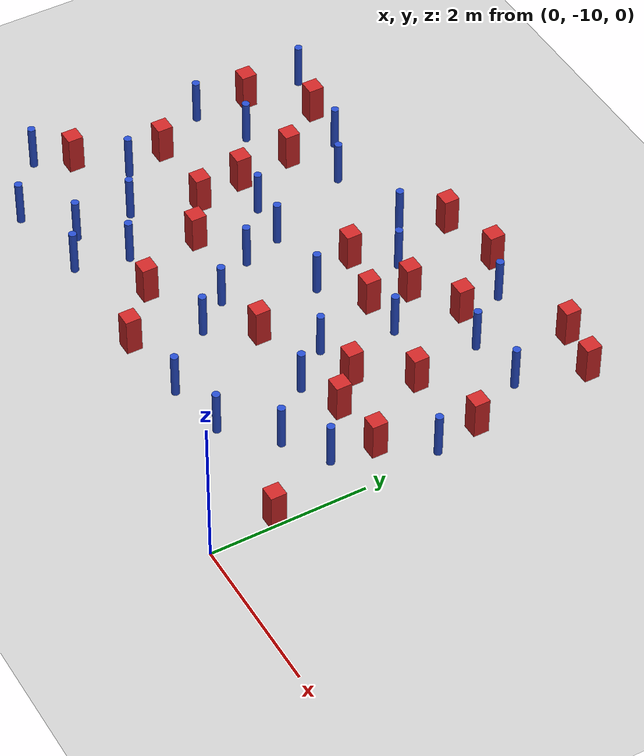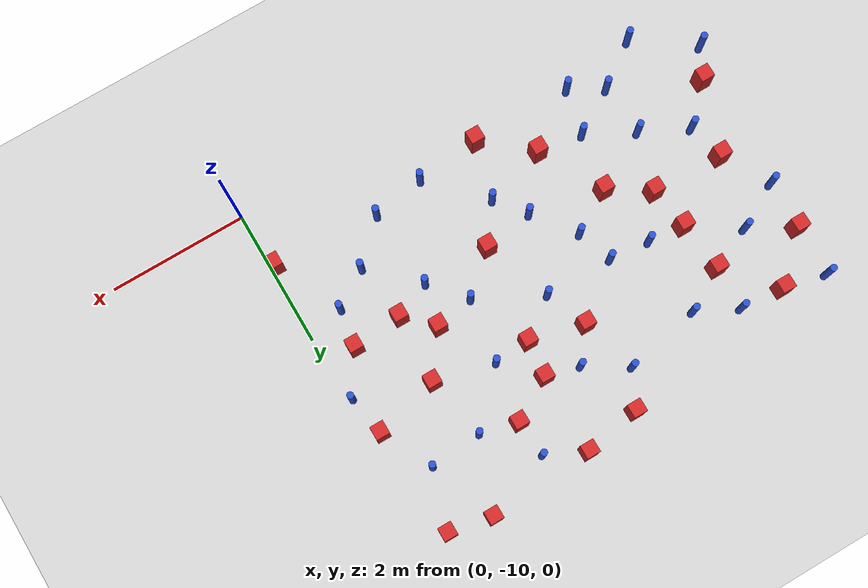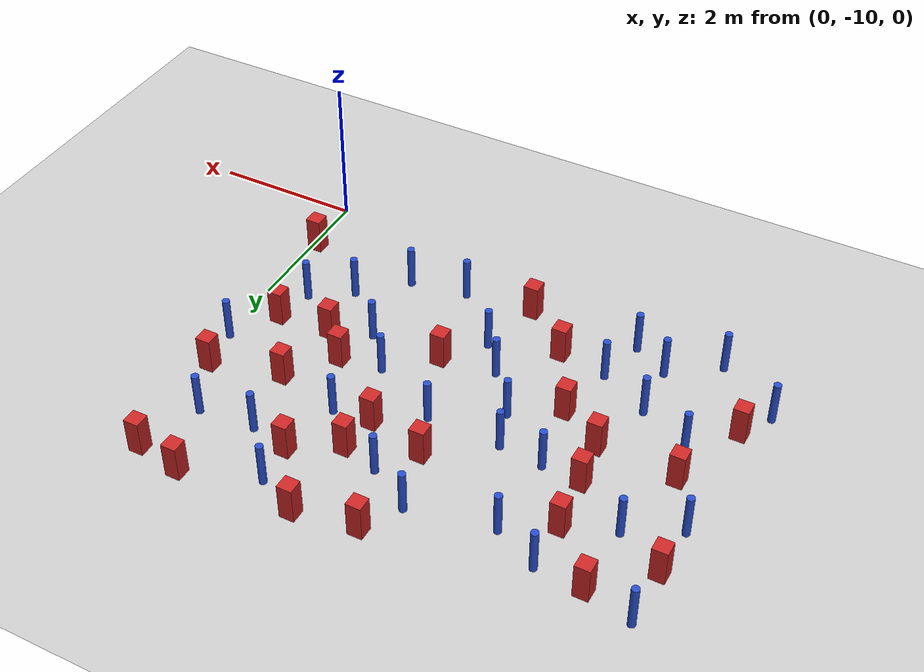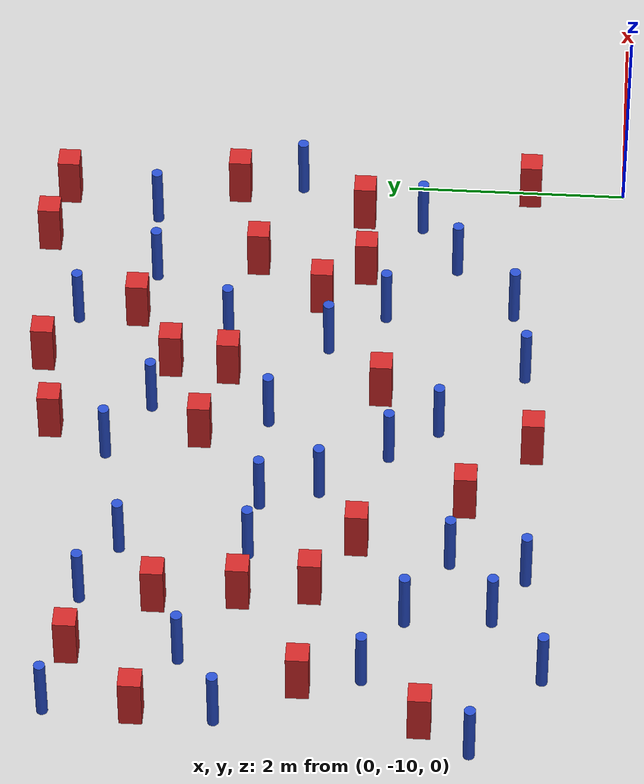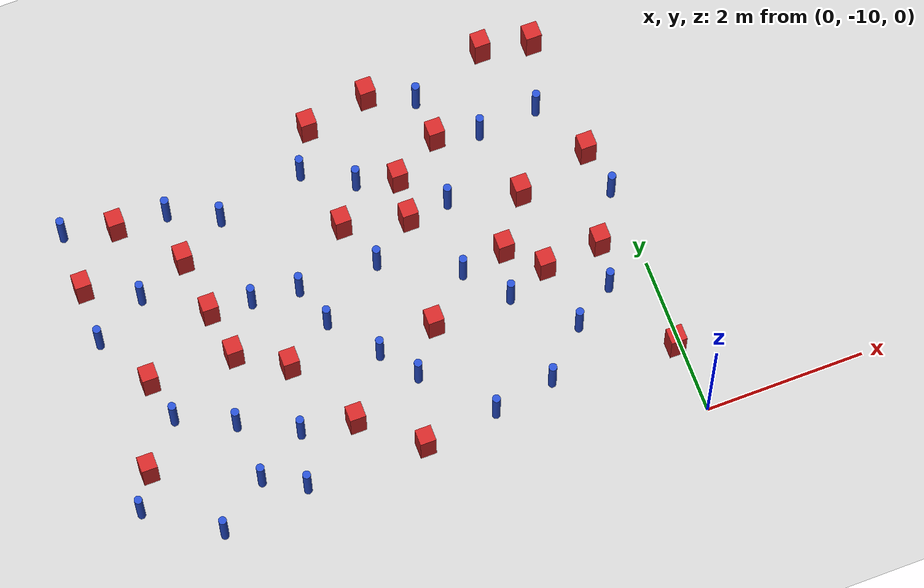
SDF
<sdf version="1.6">
 <world name="default">
  <model name="ground_plane">
   <static>1</static>
   <link name="link">
    <collision name="collision">
     <geometry><plane><normal>0 0 1</normal><size>100 100</size></plane></geometry>
     <surface><friction><ode><mu>100</mu><mu2>50</mu2></ode></friction></surface>
    </collision>
    <visual name="visual">
     <cast_shadows>0</cast_shadows>
     <geometry><plane><normal>0 0 1</normal><size>100 100</size></plane></geometry>
     <material>
      <ambient>1.0 1.0 1.0 1.0</ambient>
      <diffuse>0.8 0.8 0.8 1.0</diffuse>
      <specular>0.01 0.01 0.01 1.000000</specular>
     </material>
    </visual>
   </link>
  </model>
  <model name="square_post_obstacle2">
   <static>true</static>
   <pose>-6.1309527959 -7.35485237627 8.22691968438e-08 7.22125133819e-06 -7.54495500217e-07 2.29674213826e-05</pose>
   <link name="link">
    <pose>0 0 0.25 0 -0 0</pose>
    <inertial>
     <mass>100</mass>
     <inertia>
      <ixx>0.166667</ixx>
      <ixy>0</ixy>
      <ixz>0</ixz>
      <iyy>0.166667</iyy>
      <iyz>0</iyz>
      <izz>0.166667</izz>
     </inertia>
    </inertial>
    <collision name="collision"><geometry><box><size>.2 .2 .5</size></box></geometry></collision>
    <visual name="visual">
     <geometry><box><size>.2 .2 .5</size></box></geometry>
     <material>
      <script><name>Gazebo/Red</name><uri>file://media/materials/scripts/gazebo.material</uri></script>
     </material>
    </visual>
   </link>
  </model>
  <model name="pole_obstacle17">
   <static>true</static>
   <pose>-4.05257553489 -6.87511140498 2.88873142074e-08 -9.90536690842e-09 4.60219948965e-07 -1.20965994976e-07</pose>
   <link name="link">
    <pose>0 0 0.3 0 -0 0</pose>
    <inertial>
     <mass>1</mass>
     <inertia><ixx>0.145833</ixx><ixy>0</ixy><ixz>0</ixz><iyy>0.145833</iyy><iyz>0</iyz><izz>0.125</izz></inertia>
    </inertial>
    <collision name="collision">
     <geometry><cylinder><radius>0.05</radius><length>.6</length></cylinder></geometry>
    </collision>
    <visual name="visual">
     <geometry><cylinder><radius>0.05</radius><length>.6</length></cylinder></geometry>
     <material>
      <script><name>Gazebo/Blue</name><uri>file://media/materials/scripts/gazebo.material</uri></script>
     </material>
    </visual>
   </link>
  </model>
  <model name="square_post_obstacle13">
   <static>true</static>
   <pose>-4.49310102387 -7.76069410505 8.22691968438e-08 7.2212513382e-06 -7.54495500217e-07 2.29674213826e-05</pose>
   <link name="link">
    <pose>0 0 0.25 0 -0 0</pose>
    <inertial>
     <mass>100</mass>
     <inertia>
      <ixx>0.166667</ixx>
      <ixy>0</ixy>
      <ixz>0</ixz>
      <iyy>0.166667</iyy>
      <iyz>0</iyz>
      <izz>0.166667</izz>
     </inertia>
    </inertial>
    <collision name="collision"><geometry><box><size>.2 .2 .5</size></box></geometry></collision>
    <visual name="visual">
     <geometry><box><size>.2 .2 .5</size></box></geometry>
     <material>
      <script><name>Gazebo/Red</name><uri>file://media/materials/scripts/gazebo.material</uri></script>
     </material>
    </visual>
   </link>
  </model>
  <model name="square_post_obstacle14">
   <static>true</static>
   <pose>-1.11378315135 -6.66036221192 8.22691968438e-08 7.2212513382e-06 -7.54495500217e-07 2.29674213826e-05</pose>
   <link name="link">
    <pose>0 0 0.25 0 -0 0</pose>
    <inertial>
     <mass>100</mass>
     <inertia>
      <ixx>0.166667</ixx>
      <ixy>0</ixy>
      <ixz>0</ixz>
      <iyy>0.166667</iyy>
      <iyz>0</iyz>
      <izz>0.166667</izz>
     </inertia>
    </inertial>
    <collision name="collision"><geometry><box><size>.2 .2 .5</size></box></geometry></collision>
    <visual name="visual">
     <geometry><box><size>.2 .2 .5</size></box></geometry>
     <material>
      <script><name>Gazebo/Red</name><uri>file://media/materials/scripts/gazebo.material</uri></script>
     </material>
    </visual>
   </link>
  </model>
  <model name="pole_obstacle19">
   <static>true</static>
   <pose>-1.98300112717 -6.44486799128 2.88873142074e-08 -9.90536689721e-09 4.60219948992e-07 -1.20965994958e-07</pose>
   <link name="link">
    <pose>0 0 0.3 0 -0 0</pose>
    <inertial>
     <mass>1</mass>
     <inertia><ixx>0.145833</ixx><ixy>0</ixy><ixz>0</ixz><iyy>0.145833</iyy><iyz>0</iyz><izz>0.125</izz></inertia>
    </inertial>
    <collision name="collision">
     <geometry><cylinder><radius>0.05</radius><length>.6</length></cylinder></geometry>
    </collision>
    <visual name="visual">
     <geometry><cylinder><radius>0.05</radius><length>.6</length></cylinder></geometry>
     <material>
      <script><name>Gazebo/Blue</name><uri>file://media/materials/scripts/gazebo.material</uri></script>
     </material>
    </visual>
   </link>
  </model>
  <model name="pole_obstacle22">
   <static>true</static>
   <pose>-3.09804642663 -8.41578343584 2.88873142074e-08 -9.90536692318e-09 4.6021994893e-07 -1.20965994988e-07</pose>
   <link name="link">
    <pose>0 0 0.3 0 -0 0</pose>
    <inertial>
     <mass>1</mass>
     <inertia><ixx>0.145833</ixx><ixy>0</ixy><ixz>0</ixz><iyy>0.145833</iyy><iyz>0</iyz><izz>0.125</izz></inertia>
    </inertial>
    <collision name="collision">
     <geometry><cylinder><radius>0.05</radius><length>.6</length></cylinder></geometry>
    </collision>
    <visual name="visual">
     <geometry><cylinder><radius>0.05</radius><length>.6</length></cylinder></geometry>
     <material>
      <script><name>Gazebo/Blue</name><uri>file://media/materials/scripts/gazebo.material</uri></script>
     </material>
    </visual>
   </link>
  </model>
  <model name="pole_obstacle26">
   <static>true</static>
   <pose>-6.52541339041 -6.65995649793 2.88873142074e-08 -9.90536690842e-09 4.60219948965e-07 -1.20965994976e-07</pose>
   <link name="link">
    <pose>0 0 0.3 0 -0 0</pose>
    <inertial>
     <mass>1</mass>
     <inertia><ixx>0.145833</ixx><ixy>0</ixy><ixz>0</ixz><iyy>0.145833</iyy><iyz>0</iyz><izz>0.125</izz></inertia>
    </inertial>
    <collision name="collision">
     <geometry><cylinder><radius>0.05</radius><length>.6</length></cylinder></geometry>
    </collision>
    <visual name="visual">
     <geometry><cylinder><radius>0.05</radius><length>.6</length></cylinder></geometry>
     <material>
      <script><name>Gazebo/Blue</name><uri>file://media/materials/scripts/gazebo.material</uri></script>
     </material>
    </visual>
   </link>
  </model>
  <model name="square_post_obstacle22">
   <static>true</static>
   <pose>-0.173707152083 -6.42175875092 8.22691968438e-08 7.22125133819e-06 -7.54495500217e-07 2.29674213826e-05</pose>
   <link name="link">
    <pose>0 0 0.25 0 -0 0</pose>
    <inertial>
     <mass>100</mass>
     <inertia>
      <ixx>0.166667</ixx>
      <ixy>0</ixy>
      <ixz>0</ixz>
      <iyy>0.166667</iyy>
      <iyz>0</iyz>
      <izz>0.166667</izz>
     </inertia>
    </inertial>
    <collision name="collision"><geometry><box><size>.2 .2 .5</size></box></geometry></collision>
    <visual name="visual">
     <geometry><box><size>.2 .2 .5</size></box></geometry>
     <material>
      <script><name>Gazebo/Red</name><uri>file://media/materials/scripts/gazebo.material</uri></script>
     </material>
    </visual>
   </link>
  </model>
  <model name="square_post_obstacle34">
   <static>true</static>
   <pose>-5.07407825925 -7.38916831195 8.22691968438e-08 7.2212513382e-06 -7.54495500217e-07 2.29674213826e-05</pose>
   <link name="link">
    <pose>0 0 0.25 0 -0 0</pose>
    <inertial>
     <mass>100</mass>
     <inertia>
      <ixx>0.166667</ixx>
      <ixy>0</ixy>
      <ixz>0</ixz>
      <iyy>0.166667</iyy>
      <iyz>0</iyz>
      <izz>0.166667</izz>
     </inertia>
    </inertial>
    <collision name="collision"><geometry><box><size>.2 .2 .5</size></box></geometry></collision>
    <visual name="visual">
     <geometry><box><size>.2 .2 .5</size></box></geometry>
     <material>
      <script><name>Gazebo/Red</name><uri>file://media/materials/scripts/gazebo.material</uri></script>
     </material>
    </visual>
   </link>
  </model>
  <model name="pole_obstacle46">
   <static>true</static>
   <pose>-5.86941868117 -6.303239002 2.88873142074e-08 -9.90536690842e-09 4.60219948965e-07 -1.20965994976e-07</pose>
   <link name="link">
    <pose>0 0 0.3 0 -0 0</pose>
    <inertial>
     <mass>1</mass>
     <inertia><ixx>0.145833</ixx><ixy>0</ixy><ixz>0</ixz><iyy>0.145833</iyy><iyz>0</iyz><izz>0.125</izz></inertia>
    </inertial>
    <collision name="collision">
     <geometry><cylinder><radius>0.05</radius><length>.6</length></cylinder></geometry>
    </collision>
    <visual name="visual">
     <geometry><cylinder><radius>0.05</radius><length>.6</length></cylinder></geometry>
     <material>
      <script><name>Gazebo/Blue</name><uri>file://media/materials/scripts/gazebo.material</uri></script>
     </material>
    </visual>
   </link>
  </model>
  <model name="square_post_obstacle40">
   <static>true</static>
   <pose>-6.50919420673 -8.41149481625 8.22691968438e-08 7.2212513382e-06 -7.54495500217e-07 2.29674213826e-05</pose>
   <link name="link">
    <pose>0 0 0.25 0 -0 0</pose>
    <inertial>
     <mass>100</mass>
     <inertia>
      <ixx>0.166667</ixx>
      <ixy>0</ixy>
      <ixz>0</ixz>
      <iyy>0.166667</iyy>
      <iyz>0</iyz>
      <izz>0.166667</izz>
     </inertia>
    </inertial>
    <collision name="collision"><geometry><box><size>.2 .2 .5</size></box></geometry></collision>
    <visual name="visual">
     <geometry><box><size>.2 .2 .5</size></box></geometry>
     <material>
      <script><name>Gazebo/Red</name><uri>file://media/materials/scripts/gazebo.material</uri></script>
     </material>
    </visual>
   </link>
  </model>
  <model name="pole_obstacle54">
   <static>true</static>
   <pose>-5.29155931225 -8.97949971006 2.88873142074e-08 -9.9053668967e-09 4.60219948993e-07 -1.20965994957e-07</pose>
   <link name="link">
    <pose>0 0 0.3 0 -0 0</pose>
    <inertial>
     <mass>1</mass>
     <inertia><ixx>0.145833</ixx><ixy>0</ixy><ixz>0</ixz><iyy>0.145833</iyy><iyz>0</iyz><izz>0.125</izz></inertia>
    </inertial>
    <collision name="collision">
     <geometry><cylinder><radius>0.05</radius><length>.6</length></cylinder></geometry>
    </collision>
    <visual name="visual">
     <geometry><cylinder><radius>0.05</radius><length>.6</length></cylinder></geometry>
     <material>
      <script><name>Gazebo/Blue</name><uri>file://media/materials/scripts/gazebo.material</uri></script>
     </material>
    </visual>
   </link>
  </model>
  <model name="square_post_obstacle41">
   <static>true</static>
   <pose>-3.2504737241 -4.94294712398 8.22691968438e-08 7.2212513382e-06 -7.54495500217e-07 2.29674213826e-05</pose>
   <link name="link">
    <pose>0 0 0.25 0 -0 0</pose>
    <inertial>
     <mass>100</mass>
     <inertia>
      <ixx>0.166667</ixx>
      <ixy>0</ixy>
      <ixz>0</ixz>
      <iyy>0.166667</iyy>
      <iyz>0</iyz>
      <izz>0.166667</izz>
     </inertia>
    </inertial>
    <collision name="collision"><geometry><box><size>.2 .2 .5</size></box></geometry></collision>
    <visual name="visual">
     <geometry><box><size>.2 .2 .5</size></box></geometry>
     <material>
      <script><name>Gazebo/Red</name><uri>file://media/materials/scripts/gazebo.material</uri></script>
     </material>
    </visual>
   </link>
  </model>
  <model name="pole_obstacle57">
   <static>true</static>
   <pose>-2.13132711941 -7.36952335918 2.88873142074e-08 -9.90536689859e-09 4.60219948989e-07 -1.20965994961e-07</pose>
   <link name="link">
    <pose>0 0 0.3 0 -0 0</pose>
    <inertial>
     <mass>1</mass>
     <inertia><ixx>0.145833</ixx><ixy>0</ixy><ixz>0</ixz><iyy>0.145833</iyy><iyz>0</iyz><izz>0.125</izz></inertia>
    </inertial>
    <collision name="collision">
     <geometry><cylinder><radius>0.05</radius><length>.6</length></cylinder></geometry>
    </collision>
    <visual name="visual">
     <geometry><cylinder><radius>0.05</radius><length>.6</length></cylinder></geometry>
     <material>
      <script><name>Gazebo/Blue</name><uri>file://media/materials/scripts/gazebo.material</uri></script>
     </material>
    </visual>
   </link>
  </model>
  <model name="pole_obstacle60">
   <static>true</static>
   <pose>-1.29528579575 -5.73501356907 2.88873142074e-08 -9.90536689852e-09 4.60219948989e-07 -1.2096599496e-07</pose>
   <link name="link">
    <pose>0 0 0.3 0 -0 0</pose>
    <inertial>
     <mass>1</mass>
     <inertia><ixx>0.145833</ixx><ixy>0</ixy><ixz>0</ixz><iyy>0.145833</iyy><iyz>0</iyz><izz>0.125</izz></inertia>
    </inertial>
    <collision name="collision">
     <geometry><cylinder><radius>0.05</radius><length>.6</length></cylinder></geometry>
    </collision>
    <visual name="visual">
     <geometry><cylinder><radius>0.05</radius><length>.6</length></cylinder></geometry>
     <material>
      <script><name>Gazebo/Blue</name><uri>file://media/materials/scripts/gazebo.material</uri></script>
     </material>
    </visual>
   </link>
  </model>
  <model name="pole_obstacle61">
   <static>true</static>
   <pose>-3.52869566853 -5.45964716681 2.88873142074e-08 -9.90536689859e-09 4.60219948989e-07 -1.20965994961e-07</pose>
   <link name="link">
    <pose>0 0 0.3 0 -0 0</pose>
    <inertial>
     <mass>1</mass>
     <inertia><ixx>0.145833</ixx><ixy>0</ixy><ixz>0</ixz><iyy>0.145833</iyy><iyz>0</iyz><izz>0.125</izz></inertia>
    </inertial>
    <collision name="collision">
     <geometry><cylinder><radius>0.05</radius><length>.6</length></cylinder></geometry>
    </collision>
    <visual name="visual">
     <geometry><cylinder><radius>0.05</radius><length>.6</length></cylinder></geometry>
     <material>
      <script><name>Gazebo/Blue</name><uri>file://media/materials/scripts/gazebo.material</uri></script>
     </material>
    </visual>
   </link>
  </model>
  <model name="square_post_obstacle47">
   <static>true</static>
   <pose>-2.43380180877 -4.80000391732 8.22691968438e-08 7.22125133819e-06 -7.54495500217e-07 2.29674213826e-05</pose>
   <link name="link">
    <pose>0 0 0.25 0 -0 0</pose>
    <inertial>
     <mass>100</mass>
     <inertia>
      <ixx>0.166667</ixx>
      <ixy>0</ixy>
      <ixz>0</ixz>
      <iyy>0.166667</iyy>
      <iyz>0</iyz>
      <izz>0.166667</izz>
     </inertia>
    </inertial>
    <collision name="collision"><geometry><box><size>.2 .2 .5</size></box></geometry></collision>
    <visual name="visual">
     <geometry><box><size>.2 .2 .5</size></box></geometry>
     <material>
      <script><name>Gazebo/Red</name><uri>file://media/materials/scripts/gazebo.material</uri></script>
     </material>
    </visual>
   </link>
  </model>
  <model name="pole_obstacle78">
   <static>true</static>
   <pose>-1.70802177076 -7.86918268963 2.88873142074e-08 -9.90536689852e-09 4.60219948989e-07 -1.2096599496e-07</pose>
   <link name="link">
    <pose>0 0 0.3 0 -0 0</pose>
    <inertial>
     <mass>1</mass>
     <inertia><ixx>0.145833</ixx><ixy>0</ixy><ixz>0</ixz><iyy>0.145833</iyy><iyz>0</iyz><izz>0.125</izz></inertia>
    </inertial>
    <collision name="collision">
     <geometry><cylinder><radius>0.05</radius><length>.6</length></cylinder></geometry>
    </collision>
    <visual name="visual">
     <geometry><cylinder><radius>0.05</radius><length>.6</length></cylinder></geometry>
     <material>
      <script><name>Gazebo/Blue</name><uri>file://media/materials/scripts/gazebo.material</uri></script>
     </material>
    </visual>
   </link>
  </model>
  <model name="square_post_obstacle67">
   <static>true</static>
   <pose>-3.29611910945 -6.28791906634 8.22691968438e-08 7.22125133819e-06 -7.54495500217e-07 2.29674213826e-05</pose>
   <link name="link">
    <pose>0 0 0.25 0 -0 0</pose>
    <inertial>
     <mass>100</mass>
     <inertia>
      <ixx>0.166667</ixx>
      <ixy>0</ixy>
      <ixz>0</ixz>
      <iyy>0.166667</iyy>
      <iyz>0</iyz>
      <izz>0.166667</izz>
     </inertia>
    </inertial>
    <collision name="collision"><geometry><box><size>.2 .2 .5</size></box></geometry></collision>
    <visual name="visual">
     <geometry><box><size>.2 .2 .5</size></box></geometry>
     <material>
      <script><name>Gazebo/Red</name><uri>file://media/materials/scripts/gazebo.material</uri></script>
     </material>
    </visual>
   </link>
  </model>
  <model name="square_post_obstacle70">
   <static>true</static>
   <pose>-0.0783402880861 -9.13439227131 8.22691968438e-08 7.2212513382e-06 -7.54495500217e-07 2.29674213826e-05</pose>
   <link name="link">
    <pose>0 0 0.25 0 -0 0</pose>
    <inertial>
     <mass>100</mass>
     <inertia>
      <ixx>0.166667</ixx>
      <ixy>0</ixy>
      <ixz>0</ixz>
      <iyy>0.166667</iyy>
      <iyz>0</iyz>
      <izz>0.166667</izz>
     </inertia>
    </inertial>
    <collision name="collision"><geometry><box><size>.2 .2 .5</size></box></geometry></collision>
    <visual name="visual">
     <geometry><box><size>.2 .2 .5</size></box></geometry>
     <material>
      <script><name>Gazebo/Red</name><uri>file://media/materials/scripts/gazebo.material</uri></script>
     </material>
    </visual>
   </link>
  </model>
  <model name="pole_obstacle84">
   <static>true</static>
   <pose>-5.33642011508 -8.2233195706 2.88873142074e-08 -9.9053668967e-09 4.60219948993e-07 -1.20965994957e-07</pose>
   <link name="link">
    <pose>0 0 0.3 0 -0 0</pose>
    <inertial>
     <mass>1</mass>
     <inertia><ixx>0.145833</ixx><ixy>0</ixy><ixz>0</ixz><iyy>0.145833</iyy><iyz>0</iyz><izz>0.125</izz></inertia>
    </inertial>
    <collision name="collision">
     <geometry><cylinder><radius>0.05</radius><length>.6</length></cylinder></geometry>
    </collision>
    <visual name="visual">
     <geometry><cylinder><radius>0.05</radius><length>.6</length></cylinder></geometry>
     <material>
      <script><name>Gazebo/Blue</name><uri>file://media/materials/scripts/gazebo.material</uri></script>
     </material>
    </visual>
   </link>
  </model>
  <model name="pole_obstacle85">
   <static>true</static>
   <pose>-4.63407916396 -5.68388342919 2.88873142074e-08 -9.90536690842e-09 4.60219948965e-07 -1.20965994976e-07</pose>
   <link name="link">
    <pose>0 0 0.3 0 -0 0</pose>
    <inertial>
     <mass>1</mass>
     <inertia><ixx>0.145833</ixx><ixy>0</ixy><ixz>0</ixz><iyy>0.145833</iyy><iyz>0</iyz><izz>0.125</izz></inertia>
    </inertial>
    <collision name="collision">
     <geometry><cylinder><radius>0.05</radius><length>.6</length></cylinder></geometry>
    </collision>
    <visual name="visual">
     <geometry><cylinder><radius>0.05</radius><length>.6</length></cylinder></geometry>
     <material>
      <script><name>Gazebo/Blue</name><uri>file://media/materials/scripts/gazebo.material</uri></script>
     </material>
    </visual>
   </link>
  </model>
  <model name="pole_obstacle88">
   <static>true</static>
   <pose>-3.88429072119 -7.39313524959 2.88873142074e-08 -9.90536689859e-09 4.60219948989e-07 -1.20965994961e-07</pose>
   <link name="link">
    <pose>0 0 0.3 0 -0 0</pose>
    <inertial>
     <mass>1</mass>
     <inertia><ixx>0.145833</ixx><ixy>0</ixy><ixz>0</ixz><iyy>0.145833</iyy><iyz>0</iyz><izz>0.125</izz></inertia>
    </inertial>
    <collision name="collision">
     <geometry><cylinder><radius>0.05</radius><length>.6</length></cylinder></geometry>
    </collision>
    <visual name="visual">
     <geometry><cylinder><radius>0.05</radius><length>.6</length></cylinder></geometry>
     <material>
      <script><name>Gazebo/Blue</name><uri>file://media/materials/scripts/gazebo.material</uri></script>
     </material>
    </visual>
   </link>
  </model>
  <model name="pole_obstacle94">
   <static>true</static>
   <pose>-0.0699095740145 -7.00481002592 2.88873142074e-08 -9.90536689653e-09 4.60219948994e-07 -1.20965994959e-07</pose>
   <link name="link">
    <pose>0 0 0.3 0 -0 0</pose>
    <inertial>
     <mass>1</mass>
     <inertia><ixx>0.145833</ixx><ixy>0</ixy><ixz>0</ixz><iyy>0.145833</iyy><iyz>0</iyz><izz>0.125</izz></inertia>
    </inertial>
    <collision name="collision">
     <geometry><cylinder><radius>0.05</radius><length>.6</length></cylinder></geometry>
    </collision>
    <visual name="visual">
     <geometry><cylinder><radius>0.05</radius><length>.6</length></cylinder></geometry>
     <material>
      <script><name>Gazebo/Blue</name><uri>file://media/materials/scripts/gazebo.material</uri></script>
     </material>
    </visual>
   </link>
  </model>
  <model name="square_post_obstacle89">
   <static>true</static>
   <pose>-1.18097050835 -7.65887278141 8.22691968438e-08 7.2212513382e-06 -7.54495500217e-07 2.29674213826e-05</pose>
   <link name="link">
    <pose>0 0 0.25 0 -0 0</pose>
    <inertial>
     <mass>100</mass>
     <inertia>
      <ixx>0.166667</ixx>
      <ixy>0</ixy>
      <ixz>0</ixz>
      <iyy>0.166667</iyy>
      <iyz>0</iyz>
      <izz>0.166667</izz>
     </inertia>
    </inertial>
    <collision name="collision"><geometry><box><size>.2 .2 .5</size></box></geometry></collision>
    <visual name="visual">
     <geometry><box><size>.2 .2 .5</size></box></geometry>
     <material>
      <script><name>Gazebo/Red</name><uri>file://media/materials/scripts/gazebo.material</uri></script>
     </material>
    </visual>
   </link>
  </model>
  <model name="square_post_obstacle91">
   <static>true</static>
   <pose>-5.23971210616 -6.03947432926 8.22691968438e-08 7.2212513382e-06 -7.54495500217e-07 2.29674213826e-05</pose>
   <link name="link">
    <pose>0 0 0.25 0 -0 0</pose>
    <inertial>
     <mass>100</mass>
     <inertia>
      <ixx>0.166667</ixx>
      <ixy>0</ixy>
      <ixz>0</ixz>
      <iyy>0.166667</iyy>
      <iyz>0</iyz>
      <izz>0.166667</izz>
     </inertia>
    </inertial>
    <collision name="collision"><geometry><box><size>.2 .2 .5</size></box></geometry></collision>
    <visual name="visual">
     <geometry><box><size>.2 .2 .5</size></box></geometry>
     <material>
      <script><name>Gazebo/Red</name><uri>file://media/materials/scripts/gazebo.material</uri></script>
     </material>
    </visual>
   </link>
  </model>
  <model name="pole_obstacle100">
   <static>true</static>
   <pose>-6.00916233773 -7.88989753271 2.88873142074e-08 -9.90536690842e-09 4.60219948965e-07 -1.20965994976e-07</pose>
   <link name="link">
    <pose>0 0 0.3 0 -0 0</pose>
    <inertial>
     <mass>1</mass>
     <inertia><ixx>0.145833</ixx><ixy>0</ixy><ixz>0</ixz><iyy>0.145833</iyy><iyz>0</iyz><izz>0.125</izz></inertia>
    </inertial>
    <collision name="collision">
     <geometry><cylinder><radius>0.05</radius><length>.6</length></cylinder></geometry>
    </collision>
    <visual name="visual">
     <geometry><cylinder><radius>0.05</radius><length>.6</length></cylinder></geometry>
     <material>
      <script><name>Gazebo/Blue</name><uri>file://media/materials/scripts/gazebo.material</uri></script>
     </material>
    </visual>
   </link>
  </model>
  <model name="pole_obstacle109">
   <static>true</static>
   <pose>-1.87659597492 -5.0630314162 2.88873142074e-08 -9.90536689852e-09 4.60219948989e-07 -1.2096599496e-07</pose>
   <link name="link">
    <pose>0 0 0.3 0 -0 0</pose>
    <inertial>
     <mass>1</mass>
     <inertia><ixx>0.145833</ixx><ixy>0</ixy><ixz>0</ixz><iyy>0.145833</iyy><iyz>0</iyz><izz>0.125</izz></inertia>
    </inertial>
    <collision name="collision">
     <geometry><cylinder><radius>0.05</radius><length>.6</length></cylinder></geometry>
    </collision>
    <visual name="visual">
     <geometry><cylinder><radius>0.05</radius><length>.6</length></cylinder></geometry>
     <material>
      <script><name>Gazebo/Blue</name><uri>file://media/materials/scripts/gazebo.material</uri></script>
     </material>
    </visual>
   </link>
  </model>
  <model name="pole_obstacle112">
   <static>true</static>
   <pose>-3.06117662168 -6.88693171159 2.88873142074e-08 -9.90536692062e-09 4.60219948937e-07 -1.20965994985e-07</pose>
   <link name="link">
    <pose>0 0 0.3 0 -0 0</pose>
    <inertial>
     <mass>1</mass>
     <inertia><ixx>0.145833</ixx><ixy>0</ixy><ixz>0</ixz><iyy>0.145833</iyy><iyz>0</iyz><izz>0.125</izz></inertia>
    </inertial>
    <collision name="collision">
     <geometry><cylinder><radius>0.05</radius><length>.6</length></cylinder></geometry>
    </collision>
    <visual name="visual">
     <geometry><cylinder><radius>0.05</radius><length>.6</length></cylinder></geometry>
     <material>
      <script><name>Gazebo/Blue</name><uri>file://media/materials/scripts/gazebo.material</uri></script>
     </material>
    </visual>
   </link>
  </model>
  <model name="square_post_obstacle117">
   <static>true</static>
   <pose>-3.99494020145 -8.68925259924 8.22691968438e-08 7.22125133819e-06 -7.54495500217e-07 2.29674213826e-05</pose>
   <link name="link">
    <pose>0 0 0.25 0 -0 0</pose>
    <inertial>
     <mass>100</mass>
     <inertia>
      <ixx>0.166667</ixx>
      <ixy>0</ixy>
      <ixz>0</ixz>
      <iyy>0.166667</iyy>
      <iyz>0</iyz>
      <izz>0.166667</izz>
     </inertia>
    </inertial>
    <collision name="collision"><geometry><box><size>.2 .2 .5</size></box></geometry></collision>
    <visual name="visual">
     <geometry><box><size>.2 .2 .5</size></box></geometry>
     <material>
      <script><name>Gazebo/Red</name><uri>file://media/materials/scripts/gazebo.material</uri></script>
     </material>
    </visual>
   </link>
  </model>
  <model name="square_post_obstacle118">
   <static>true</static>
   <pose>-2.44662604612 -5.96003231308 8.22691968438e-08 7.22125133819e-06 -7.54495500217e-07 2.29674213826e-05</pose>
   <link name="link">
    <pose>0 0 0.25 0 -0 0</pose>
    <inertial>
     <mass>100</mass>
     <inertia>
      <ixx>0.166667</ixx>
      <ixy>0</ixy>
      <ixz>0</ixz>
      <iyy>0.166667</iyy>
      <iyz>0</iyz>
      <izz>0.166667</izz>
     </inertia>
    </inertial>
    <collision name="collision"><geometry><box><size>.2 .2 .5</size></box></geometry></collision>
    <visual name="visual">
     <geometry><box><size>.2 .2 .5</size></box></geometry>
     <material>
      <script><name>Gazebo/Red</name><uri>file://media/materials/scripts/gazebo.material</uri></script>
     </material>
    </visual>
   </link>
  </model>
  <model name="pole_obstacle122">
   <static>true</static>
   <pose>-3.42806868895 -7.98590824944 2.88873142074e-08 -9.90536692129e-09 4.60219948935e-07 -1.20965994985e-07</pose>
   <link name="link">
    <pose>0 0 0.3 0 -0 0</pose>
    <inertial>
     <mass>1</mass>
     <inertia><ixx>0.145833</ixx><ixy>0</ixy><ixz>0</ixz><iyy>0.145833</iyy><iyz>0</iyz><izz>0.125</izz></inertia>
    </inertial>
    <collision name="collision">
     <geometry><cylinder><radius>0.05</radius><length>.6</length></cylinder></geometry>
    </collision>
    <visual name="visual">
     <geometry><cylinder><radius>0.05</radius><length>.6</length></cylinder></geometry>
     <material>
      <script><name>Gazebo/Blue</name><uri>file://media/materials/scripts/gazebo.material</uri></script>
     </material>
    </visual>
   </link>
  </model>
  <model name="square_post_obstacle124">
   <static>true</static>
   <pose>-0.904534254057 -4.70929111497 8.22691968438e-08 7.22125133819e-06 -7.54495500217e-07 2.29674213826e-05</pose>
   <link name="link">
    <pose>0 0 0.25 0 -0 0</pose>
    <inertial>
     <mass>100</mass>
     <inertia>
      <ixx>0.166667</ixx>
      <ixy>0</ixy>
      <ixz>0</ixz>
      <iyy>0.166667</iyy>
      <iyz>0</iyz>
      <izz>0.166667</izz>
     </inertia>
    </inertial>
    <collision name="collision"><geometry><box><size>.2 .2 .5</size></box></geometry></collision>
    <visual name="visual">
     <geometry><box><size>.2 .2 .5</size></box></geometry>
     <material>
      <script><name>Gazebo/Red</name><uri>file://media/materials/scripts/gazebo.material</uri></script>
     </material>
    </visual>
   </link>
  </model>
  <model name="square_post_obstacle126">
   <static>true</static>
   <pose>-0.276890255943 -4.83239822564 8.22691968438e-08 7.2212513382e-06 -7.54495500217e-07 2.29674213826e-05</pose>
   <link name="link">
    <pose>0 0 0.25 0 -0 0</pose>
    <inertial>
     <mass>100</mass>
     <inertia>
      <ixx>0.166667</ixx>
      <ixy>0</ixy>
      <ixz>0</ixz>
      <iyy>0.166667</iyy>
      <iyz>0</iyz>
      <izz>0.166667</izz>
     </inertia>
    </inertial>
    <collision name="collision"><geometry><box><size>.2 .2 .5</size></box></geometry></collision>
    <visual name="visual">
     <geometry><box><size>.2 .2 .5</size></box></geometry>
     <material>
      <script><name>Gazebo/Red</name><uri>file://media/materials/scripts/gazebo.material</uri></script>
     </material>
    </visual>
   </link>
  </model>
  <model name="pole_obstacle134">
   <static>true</static>
   <pose>-5.92154549318 -9.43304631477 2.88873142074e-08 -9.9053668967e-09 4.60219948993e-07 -1.20965994957e-07</pose>
   <link name="link">
    <pose>0 0 0.3 0 -0 0</pose>
    <inertial>
     <mass>1</mass>
     <inertia><ixx>0.145833</ixx><ixy>0</ixy><ixz>0</ixz><iyy>0.145833</iyy><iyz>0</iyz><izz>0.125</izz></inertia>
    </inertial>
    <collision name="collision">
     <geometry><cylinder><radius>0.05</radius><length>.6</length></cylinder></geometry>
    </collision>
    <visual name="visual">
     <geometry><cylinder><radius>0.05</radius><length>.6</length></cylinder></geometry>
     <material>
      <script><name>Gazebo/Blue</name><uri>file://media/materials/scripts/gazebo.material</uri></script>
     </material>
    </visual>
   </link>
  </model>
  <model name="pole_obstacle138">
   <static>true</static>
   <pose>-1.62092562166 -9.03458516604 2.88873142074e-08 -9.90536690474e-09 4.60219948974e-07 -1.2096599497e-07</pose>
   <link name="link">
    <pose>0 0 0.3 0 -0 0</pose>
    <inertial>
     <mass>1</mass>
     <inertia><ixx>0.145833</ixx><ixy>0</ixy><ixz>0</ixz><iyy>0.145833</iyy><iyz>0</iyz><izz>0.125</izz></inertia>
    </inertial>
    <collision name="collision">
     <geometry><cylinder><radius>0.05</radius><length>.6</length></cylinder></geometry>
    </collision>
    <visual name="visual">
     <geometry><cylinder><radius>0.05</radius><length>.6</length></cylinder></geometry>
     <material>
      <script><name>Gazebo/Blue</name><uri>file://media/materials/scripts/gazebo.material</uri></script>
     </material>
    </visual>
   </link>
  </model>
  <model name="pole_obstacle144">
   <static>true</static>
   <pose>-6.49115831822 -5.19623677837 2.88873142074e-08 -9.90536690842e-09 4.60219948965e-07 -1.20965994976e-07</pose>
   <link name="link">
    <pose>0 0 0.3 0 -0 0</pose>
    <inertial>
     <mass>1</mass>
     <inertia><ixx>0.145833</ixx><ixy>0</ixy><ixz>0</ixz><iyy>0.145833</iyy><iyz>0</iyz><izz>0.125</izz></inertia>
    </inertial>
    <collision name="collision">
     <geometry><cylinder><radius>0.05</radius><length>.6</length></cylinder></geometry>
    </collision>
    <visual name="visual">
     <geometry><cylinder><radius>0.05</radius><length>.6</length></cylinder></geometry>
     <material>
      <script><name>Gazebo/Blue</name><uri>file://media/materials/scripts/gazebo.material</uri></script>
     </material>
    </visual>
   </link>
  </model>
  <model name="pole_obstacle145">
   <static>true</static>
   <pose>-1.06654888138 -8.49364175249 2.88873142074e-08 -9.90536690474e-09 4.60219948974e-07 -1.2096599497e-07</pose>
   <link name="link">
    <pose>0 0 0.3 0 -0 0</pose>
    <inertial>
     <mass>1</mass>
     <inertia><ixx>0.145833</ixx><ixy>0</ixy><ixz>0</ixz><iyy>0.145833</iyy><iyz>0</iyz><izz>0.125</izz></inertia>
    </inertial>
    <collision name="collision">
     <geometry><cylinder><radius>0.05</radius><length>.6</length></cylinder></geometry>
    </collision>
    <visual name="visual">
     <geometry><cylinder><radius>0.05</radius><length>.6</length></cylinder></geometry>
     <material>
      <script><name>Gazebo/Blue</name><uri>file://media/materials/scripts/gazebo.material</uri></script>
     </material>
    </visual>
   </link>
  </model>
  <model name="square_post_obstacle143">
   <static>true</static>
   <pose>-2.69702260039 -7.87666314966 8.22691968438e-08 7.22125133819e-06 -7.54495500217e-07 2.29674213826e-05</pose>
   <link name="link">
    <pose>0 0 0.25 0 -0 0</pose>
    <inertial>
     <mass>100</mass>
     <inertia>
      <ixx>0.166667</ixx>
      <ixy>0</ixy>
      <ixz>0</ixz>
      <iyy>0.166667</iyy>
      <iyz>0</iyz>
      <izz>0.166667</izz>
     </inertia>
    </inertial>
    <collision name="collision"><geometry><box><size>.2 .2 .5</size></box></geometry></collision>
    <visual name="visual">
     <geometry><box><size>.2 .2 .5</size></box></geometry>
     <material>
      <script><name>Gazebo/Red</name><uri>file://media/materials/scripts/gazebo.material</uri></script>
     </material>
    </visual>
   </link>
  </model>
  <model name="pole_obstacle154">
   <static>true</static>
   <pose>-2.9377650268 -5.82441637785 2.88873142074e-08 -9.90536689859e-09 4.60219948989e-07 -1.20965994961e-07</pose>
   <link name="link">
    <pose>0 0 0.3 0 -0 0</pose>
    <inertial>
     <mass>1</mass>
     <inertia><ixx>0.145833</ixx><ixy>0</ixy><ixz>0</ixz><iyy>0.145833</iyy><iyz>0</iyz><izz>0.125</izz></inertia>
    </inertial>
    <collision name="collision">
     <geometry><cylinder><radius>0.05</radius><length>.6</length></cylinder></geometry>
    </collision>
    <visual name="visual">
     <geometry><cylinder><radius>0.05</radius><length>.6</length></cylinder></geometry>
     <material>
      <script><name>Gazebo/Blue</name><uri>file://media/materials/scripts/gazebo.material</uri></script>
     </material>
    </visual>
   </link>
  </model>
  <model name="square_post_obstacle151">
   <static>true</static>
   <pose>-5.86002186079 -5.34544403566 8.22691968438e-08 7.22125133819e-06 -7.54495500217e-07 2.29674213826e-05</pose>
   <link name="link">
    <pose>0 0 0.25 0 -0 0</pose>
    <inertial>
     <mass>100</mass>
     <inertia>
      <ixx>0.166667</ixx>
      <ixy>0</ixy>
      <ixz>0</ixz>
      <iyy>0.166667</iyy>
      <iyz>0</iyz>
      <izz>0.166667</izz>
     </inertia>
    </inertial>
    <collision name="collision"><geometry><box><size>.2 .2 .5</size></box></geometry></collision>
    <visual name="visual">
     <geometry><box><size>.2 .2 .5</size></box></geometry>
     <material>
      <script><name>Gazebo/Red</name><uri>file://media/materials/scripts/gazebo.material</uri></script>
     </material>
    </visual>
   </link>
  </model>
  <model name="pole_obstacle155">
   <static>true</static>
   <pose>-4.63997699266 -6.81745680327 2.88873142074e-08 -9.90536690842e-09 4.60219948965e-07 -1.20965994976e-07</pose>
   <link name="link">
    <pose>0 0 0.3 0 -0 0</pose>
    <inertial>
     <mass>1</mass>
     <inertia><ixx>0.145833</ixx><ixy>0</ixy><ixz>0</ixz><iyy>0.145833</iyy><iyz>0</iyz><izz>0.125</izz></inertia>
    </inertial>
    <collision name="collision">
     <geometry><cylinder><radius>0.05</radius><length>.6</length></cylinder></geometry>
    </collision>
    <visual name="visual">
     <geometry><cylinder><radius>0.05</radius><length>.6</length></cylinder></geometry>
     <material>
      <script><name>Gazebo/Blue</name><uri>file://media/materials/scripts/gazebo.material</uri></script>
     </material>
    </visual>
   </link>
  </model>
  <model name="pole_obstacle156">
   <static>true</static>
   <pose>-5.22749909142 -5.38867334209 2.88873142074e-08 -9.90536690842e-09 4.60219948965e-07 -1.20965994976e-07</pose>
   <link name="link">
    <pose>0 0 0.3 0 -0 0</pose>
    <inertial>
     <mass>1</mass>
     <inertia><ixx>0.145833</ixx><ixy>0</ixy><ixz>0</ixz><iyy>0.145833</iyy><iyz>0</iyz><izz>0.125</izz></inertia>
    </inertial>
    <collision name="collision">
     <geometry><cylinder><radius>0.05</radius><length>.6</length></cylinder></geometry>
    </collision>
    <visual name="visual">
     <geometry><cylinder><radius>0.05</radius><length>.6</length></cylinder></geometry>
     <material>
      <script><name>Gazebo/Blue</name><uri>file://media/materials/scripts/gazebo.material</uri></script>
     </material>
    </visual>
   </link>
  </model>
  <model name="pole_obstacle160">
   <static>true</static>
   <pose>-4.8103293963 -9.25465381472 2.88873142074e-08 -9.9053668967e-09 4.60219948993e-07 -1.20965994957e-07</pose>
   <link name="link">
    <pose>0 0 0.3 0 -0 0</pose>
    <inertial>
     <mass>1</mass>
     <inertia><ixx>0.145833</ixx><ixy>0</ixy><ixz>0</ixz><iyy>0.145833</iyy><iyz>0</iyz><izz>0.125</izz></inertia>
    </inertial>
    <collision name="collision">
     <geometry><cylinder><radius>0.05</radius><length>.6</length></cylinder></geometry>
    </collision>
    <visual name="visual">
     <geometry><cylinder><radius>0.05</radius><length>.6</length></cylinder></geometry>
     <material>
      <script><name>Gazebo/Blue</name><uri>file://media/materials/scripts/gazebo.material</uri></script>
     </material>
    </visual>
   </link>
  </model>
  <model name="pole_obstacle165">
   <static>true</static>
   <pose>-2.38819163687 -9.16479034096 2.88873142074e-08 -9.90536692318e-09 4.6021994893e-07 -1.20965994988e-07</pose>
   <link name="link">
    <pose>0 0 0.3 0 -0 0</pose>
    <inertial>
     <mass>1</mass>
     <inertia><ixx>0.145833</ixx><ixy>0</ixy><ixz>0</ixz><iyy>0.145833</iyy><iyz>0</iyz><izz>0.125</izz></inertia>
    </inertial>
    <collision name="collision">
     <geometry><cylinder><radius>0.05</radius><length>.6</length></cylinder></geometry>
    </collision>
    <visual name="visual">
     <geometry><cylinder><radius>0.05</radius><length>.6</length></cylinder></geometry>
     <material>
      <script><name>Gazebo/Blue</name><uri>file://media/materials/scripts/gazebo.material</uri></script>
     </material>
    </visual>
   </link>
  </model>
  <model name="pole_obstacle168">
   <static>true</static>
   <pose>-4.65197640508 -8.58582534299 2.88873142074e-08 -9.9053668967e-09 4.60219948993e-07 -1.20965994957e-07</pose>
   <link name="link">
    <pose>0 0 0.3 0 -0 0</pose>
    <inertial>
     <mass>1</mass>
     <inertia><ixx>0.145833</ixx><ixy>0</ixy><ixz>0</ixz><iyy>0.145833</iyy><iyz>0</iyz><izz>0.125</izz></inertia>
    </inertial>
    <collision name="collision">
     <geometry><cylinder><radius>0.05</radius><length>.6</length></cylinder></geometry>
    </collision>
    <visual name="visual">
     <geometry><cylinder><radius>0.05</radius><length>.6</length></cylinder></geometry>
     <material>
      <script><name>Gazebo/Blue</name><uri>file://media/materials/scripts/gazebo.material</uri></script>
     </material>
    </visual>
   </link>
  </model>
  <model name="square_post_obstacle168">
   <static>true</static>
   <pose>-2.50540848216 -6.48633892724 8.22691968438e-08 7.22125133819e-06 -7.54495500217e-07 2.29674213826e-05</pose>
   <link name="link">
    <pose>0 0 0.25 0 -0 0</pose>
    <inertial>
     <mass>100</mass>
     <inertia>
      <ixx>0.166667</ixx>
      <ixy>0</ixy>
      <ixz>0</ixz>
      <iyy>0.166667</iyy>
      <iyz>0</iyz>
      <izz>0.166667</izz>
     </inertia>
    </inertial>
    <collision name="collision"><geometry><box><size>.2 .2 .5</size></box></geometry></collision>
    <visual name="visual">
     <geometry><box><size>.2 .2 .5</size></box></geometry>
     <material>
      <script><name>Gazebo/Red</name><uri>file://media/materials/scripts/gazebo.material</uri></script>
     </material>
    </visual>
   </link>
  </model>
  <model name="square_post_obstacle172">
   <static>true</static>
   <pose>-1.56671245031 -7.2735879181 8.22691968438e-08 7.2212513382e-06 -7.54495500217e-07 2.29674213826e-05</pose>
   <link name="link">
    <pose>0 0 0.25 0 -0 0</pose>
    <inertial>
     <mass>100</mass>
     <inertia>
      <ixx>0.166667</ixx>
      <ixy>0</ixy>
      <ixz>0</ixz>
      <iyy>0.166667</iyy>
      <iyz>0</iyz>
      <izz>0.166667</izz>
     </inertia>
    </inertial>
    <collision name="collision"><geometry><box><size>.2 .2 .5</size></box></geometry></collision>
    <visual name="visual">
     <geometry><box><size>.2 .2 .5</size></box></geometry>
     <material>
      <script><name>Gazebo/Red</name><uri>file://media/materials/scripts/gazebo.material</uri></script>
     </material>
    </visual>
   </link>
  </model>
  <model name="square_post_obstacle174">
   <static>true</static>
   <pose>-1.83415948196 -5.60410198232 8.22691968438e-08 7.2212513382e-06 -7.54495500217e-07 2.29674213826e-05</pose>
   <link name="link">
    <pose>0 0 0.25 0 -0 0</pose>
    <inertial>
     <mass>100</mass>
     <inertia>
      <ixx>0.166667</ixx>
      <ixy>0</ixy>
      <ixz>0</ixz>
      <iyy>0.166667</iyy>
      <iyz>0</iyz>
      <izz>0.166667</izz>
     </inertia>
    </inertial>
    <collision name="collision"><geometry><box><size>.2 .2 .5</size></box></geometry></collision>
    <visual name="visual">
     <geometry><box><size>.2 .2 .5</size></box></geometry>
     <material>
      <script><name>Gazebo/Red</name><uri>file://media/materials/scripts/gazebo.material</uri></script>
     </material>
    </visual>
   </link>
  </model>
  <model name="square_post_obstacle181">
   <static>true</static>
   <pose>-0.455981100095 -7.60427324846 8.22691968438e-08 7.22125133819e-06 -7.54495500217e-07 2.29674213826e-05</pose>
   <link name="link">
    <pose>0 0 0.25 0 -0 0</pose>
    <inertial>
     <mass>100</mass>
     <inertia>
      <ixx>0.166667</ixx>
      <ixy>0</ixy>
      <ixz>0</ixz>
      <iyy>0.166667</iyy>
      <iyz>0</iyz>
      <izz>0.166667</izz>
     </inertia>
    </inertial>
    <collision name="collision"><geometry><box><size>.2 .2 .5</size></box></geometry></collision>
    <visual name="visual">
     <geometry><box><size>.2 .2 .5</size></box></geometry>
     <material>
      <script><name>Gazebo/Red</name><uri>file://media/materials/scripts/gazebo.material</uri></script>
     </material>
    </visual>
   </link>
  </model>
  <model name="pole_obstacle183">
   <static>true</static>
   <pose>-0.542220728167 -8.14795929245 2.88873142074e-08 -9.90536691171e-09 4.60219948957e-07 -1.20965994981e-07</pose>
   <link name="link">
    <pose>0 0 0.3 0 -0 0</pose>
    <inertial>
     <mass>1</mass>
     <inertia><ixx>0.145833</ixx><ixy>0</ixy><ixz>0</ixz><iyy>0.145833</iyy><iyz>0</iyz><izz>0.125</izz></inertia>
    </inertial>
    <collision name="collision">
     <geometry><cylinder><radius>0.05</radius><length>.6</length></cylinder></geometry>
    </collision>
    <visual name="visual">
     <geometry><cylinder><radius>0.05</radius><length>.6</length></cylinder></geometry>
     <material>
      <script><name>Gazebo/Blue</name><uri>file://media/materials/scripts/gazebo.material</uri></script>
     </material>
    </visual>
   </link>
  </model>
  <model name="square_post_obstacle197">
   <static>true</static>
   <pose>-3.32264463272 -9.2612319443 8.22691968438e-08 7.22125133819e-06 -7.54495500217e-07 2.29674213826e-05</pose>
   <link name="link">
    <pose>0 0 0.25 0 -0 0</pose>
    <inertial>
     <mass>100</mass>
     <inertia>
      <ixx>0.166667</ixx>
      <ixy>0</ixy>
      <ixz>0</ixz>
      <iyy>0.166667</iyy>
      <iyz>0</iyz>
      <izz>0.166667</izz>
     </inertia>
    </inertial>
    <collision name="collision"><geometry><box><size>.2 .2 .5</size></box></geometry></collision>
    <visual name="visual">
     <geometry><box><size>.2 .2 .5</size></box></geometry>
     <material>
      <script><name>Gazebo/Red</name><uri>file://media/materials/scripts/gazebo.material</uri></script>
     </material>
    </visual>
   </link>
  </model>
  <model name="pole_obstacle191">
   <static>true</static>
   <pose>-0.540611398025 -5.67626241205 2.88873142074e-08 -9.90536689526e-09 4.60219948997e-07 -1.20965994955e-07</pose>
   <link name="link">
    <pose>0 0 0.3 0 -0 0</pose>
    <inertial>
     <mass>1</mass>
     <inertia><ixx>0.145833</ixx><ixy>0</ixy><ixz>0</ixz><iyy>0.145833</iyy><iyz>0</iyz><izz>0.125</izz></inertia>
    </inertial>
    <collision name="collision">
     <geometry><cylinder><radius>0.05</radius><length>.6</length></cylinder></geometry>
    </collision>
    <visual name="visual">
     <geometry><cylinder><radius>0.05</radius><length>.6</length></cylinder></geometry>
     <material>
      <script><name>Gazebo/Blue</name><uri>file://media/materials/scripts/gazebo.material</uri></script>
     </material>
    </visual>
   </link>
  </model>
  <model name="square_post_obstacle214">
   <static>true</static>
   <pose>-6.49417707029 -5.9595510922 8.22691968438e-08 7.22125133819e-06 -7.54495500217e-07 2.29674213826e-05</pose>
   <link name="link">
    <pose>0 0 0.25 0 -0 0</pose>
    <inertial>
     <mass>100</mass>
     <inertia>
      <ixx>0.166667</ixx>
      <ixy>0</ixy>
      <ixz>0</ixz>
      <iyy>0.166667</iyy>
      <iyz>0</iyz>
      <izz>0.166667</izz>
     </inertia>
    </inertial>
    <collision name="collision"><geometry><box><size>.2 .2 .5</size></box></geometry></collision>
    <visual name="visual">
     <geometry><box><size>.2 .2 .5</size></box></geometry>
     <material>
      <script><name>Gazebo/Red</name><uri>file://media/materials/scripts/gazebo.material</uri></script>
     </material>
    </visual>
   </link>
  </model>
  <model name="pole_obstacle200">
   <static>true</static>
   <pose>-6.7612600874 -8.84470865056 2.88873142074e-08 -9.9053668967e-09 4.60219948993e-07 -1.20965994957e-07</pose>
   <link name="link">
    <pose>0 0 0.3 0 -0 0</pose>
    <inertial>
     <mass>1</mass>
     <inertia><ixx>0.145833</ixx><ixy>0</ixy><ixz>0</ixz><iyy>0.145833</iyy><iyz>0</iyz><izz>0.125</izz></inertia>
    </inertial>
    <collision name="collision">
     <geometry><cylinder><radius>0.05</radius><length>.6</length></cylinder></geometry>
    </collision>
    <visual name="visual">
     <geometry><cylinder><radius>0.05</radius><length>.6</length></cylinder></geometry>
     <material>
      <script><name>Gazebo/Blue</name><uri>file://media/materials/scripts/gazebo.material</uri></script>
     </material>
    </visual>
   </link>
  </model>
  <model name="square_post_obstacle223">
   <static>true</static>
   <pose>-5.16369996738 -6.77100003534 8.22691968438e-08 7.22125133819e-06 -7.54495500217e-07 2.29674213826e-05</pose>
   <link name="link">
    <pose>0 0 0.25 0 -0 0</pose>
    <inertial>
     <mass>100</mass>
     <inertia>
      <ixx>0.166667</ixx>
      <ixy>0</ixy>
      <ixz>0</ixz>
      <iyy>0.166667</iyy>
      <iyz>0</iyz>
      <izz>0.166667</izz>
     </inertia>
    </inertial>
    <collision name="collision"><geometry><box><size>.2 .2 .5</size></box></geometry></collision>
    <visual name="visual">
     <geometry><box><size>.2 .2 .5</size></box></geometry>
     <material>
      <script><name>Gazebo/Red</name><uri>file://media/materials/scripts/gazebo.material</uri></script>
     </material>
    </visual>
   </link>
  </model>
 </world>
</sdf>
